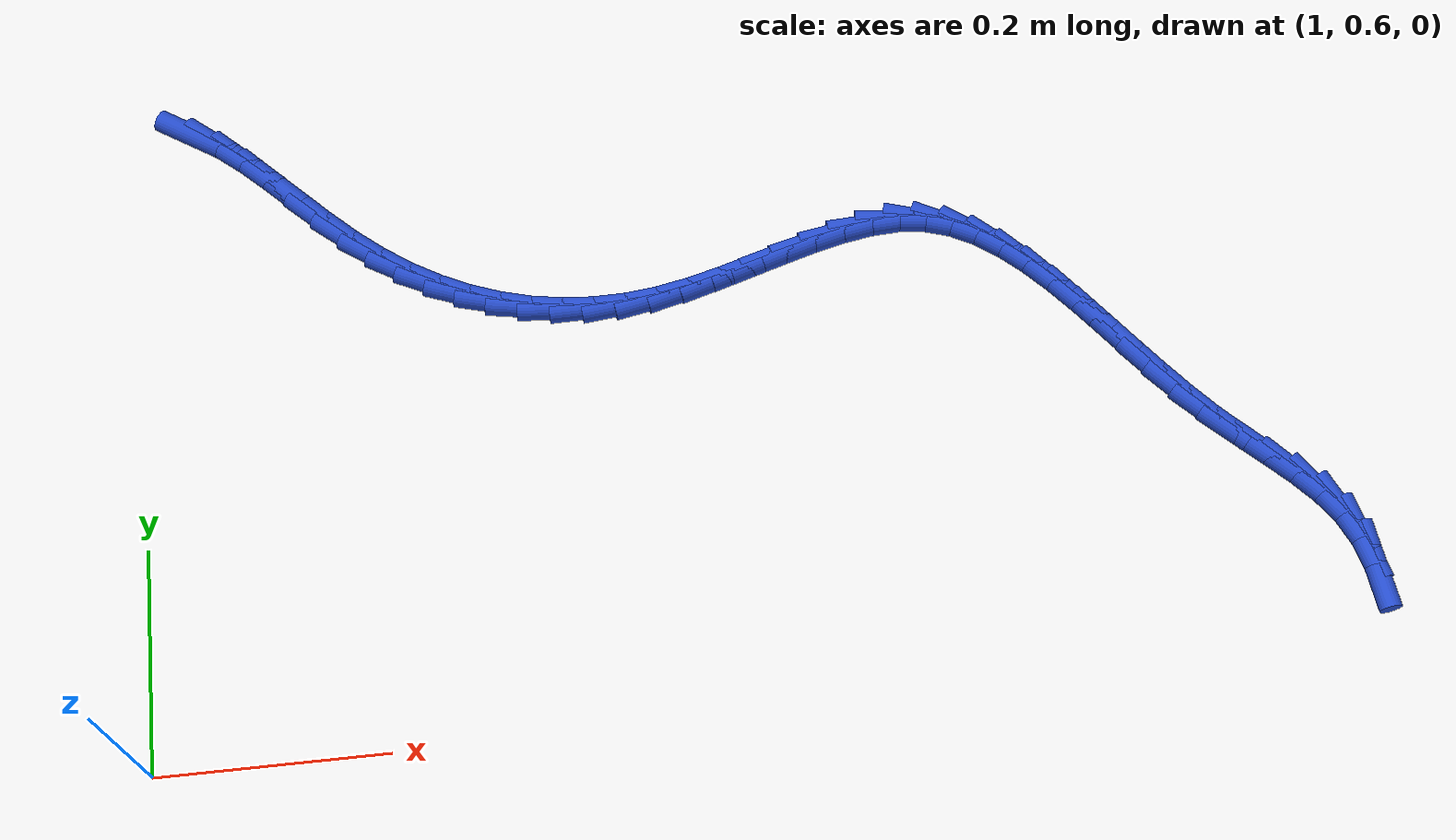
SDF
<sdf version="1.6">
 <world name="default">
  <model name="ground_plane">
   <static>1</static>
   <link name="link">
    <collision name="collision">
     <geometry><plane><normal>0 0 1</normal><size>100 100</size></plane></geometry>
     <surface><friction><ode><mu>100</mu><mu2>50</mu2></ode></friction></surface>
    </collision>
    <visual name="visual">
     <cast_shadows>0</cast_shadows>
     <geometry><plane><normal>0 0 1</normal><size>100 100</size></plane></geometry>
     <material>
      <script><uri>file://media/materials/scripts/gazebo.material</uri><name>Gazebo/WhiteGlow</name></script>
     </material>
    </visual>
   </link>
  </model>
  <model name="line">
   <link name="link_66">
    <pose>1.0518490989701217 1.1957604324525315 0.01 0 1.57 -0.5650890107931418</pose>
    <collision name="collision">
     <geometry><cylinder><radius>0.01</radius><length>0.08</length></cylinder></geometry>
    </collision>
    <visual name="visual">
     <material>
      <script><name>Gazebo/Blue</name><uri>file://media/materials/scripts/gazebo.material</uri></script>
     </material>
     <geometry><cylinder><radius>0.01</radius><length>0.08</length></cylinder></geometry>
    </visual>
   </link>
   <link name="link_67">
    <pose>1.0736690568654474 1.1819252347233482 0.01 0 1.57 -0.6861546189982555</pose>
    <collision name="collision">
     <geometry><cylinder><radius>0.01</radius><length>0.08</length></cylinder></geometry>
    </collision>
    <visual name="visual">
     <material>
      <script><name>Gazebo/Blue</name><uri>file://media/materials/scripts/gazebo.material</uri></script>
     </material>
     <geometry><cylinder><radius>0.01</radius><length>0.08</length></cylinder></geometry>
    </visual>
   </link>
   <link name="link_68">
    <pose>1.0957716449278216 1.163825607711318 0.01 0 1.57 -0.7538373123320089</pose>
    <collision name="collision">
     <geometry><cylinder><radius>0.01</radius><length>0.08</length></cylinder></geometry>
    </collision>
    <visual name="visual">
     <material>
      <script><name>Gazebo/Blue</name><uri>file://media/materials/scripts/gazebo.material</uri></script>
     </material>
     <geometry><cylinder><radius>0.01</radius><length>0.08</length></cylinder></geometry>
    </visual>
   </link>
   <link name="link_69">
    <pose>1.1182322991945388 1.1427397741714995 0.01 0 1.57 -0.7832019829565643</pose>
    <collision name="collision">
     <geometry><cylinder><radius>0.01</radius><length>0.08</length></cylinder></geometry>
    </collision>
    <visual name="visual">
     <material>
      <script><name>Gazebo/Blue</name><uri>file://media/materials/scripts/gazebo.material</uri></script>
     </material>
     <geometry><cylinder><radius>0.01</radius><length>0.08</length></cylinder></geometry>
    </visual>
   </link>
   <link name="link_70">
    <pose>1.141126455702895 1.1199459568589514 0.01 0 1.57 -0.781548101660726</pose>
    <collision name="collision">
     <geometry><cylinder><radius>0.01</radius><length>0.08</length></cylinder></geometry>
    </collision>
    <visual name="visual">
     <material>
      <script><name>Gazebo/Blue</name><uri>file://media/materials/scripts/gazebo.material</uri></script>
     </material>
     <geometry><cylinder><radius>0.01</radius><length>0.08</length></cylinder></geometry>
    </visual>
   </link>
   <link name="link_71">
    <pose>1.1645295504901843 1.0967223785287328 0.01 0 1.57 -0.7506351547629723</pose>
    <collision name="collision">
     <geometry><cylinder><radius>0.01</radius><length>0.08</length></cylinder></geometry>
    </collision>
    <visual name="visual">
     <material>
      <script><name>Gazebo/Blue</name><uri>file://media/materials/scripts/gazebo.material</uri></script>
     </material>
     <geometry><cylinder><radius>0.01</radius><length>0.08</length></cylinder></geometry>
    </visual>
   </link>
   <link name="link_72">
    <pose>1.1885170195937018 1.0743472619359025 0.01 0 1.57 -0.6893083918656042</pose>
    <collision name="collision">
     <geometry><cylinder><radius>0.01</radius><length>0.08</length></cylinder></geometry>
    </collision>
    <visual name="visual">
     <material>
      <script><name>Gazebo/Blue</name><uri>file://media/materials/scripts/gazebo.material</uri></script>
     </material>
     <geometry><cylinder><radius>0.01</radius><length>0.08</length></cylinder></geometry>
    </visual>
   </link>
   <link name="link_73">
    <pose>1.213158577444704 1.0540383293826272 0.01 0 1.57 -0.6118042056567816</pose>
    <collision name="collision">
     <geometry><cylinder><radius>0.01</radius><length>0.08</length></cylinder></geometry>
    </collision>
    <visual name="visual">
     <material>
      <script><name>Gazebo/Blue</name><uri>file://media/materials/scripts/gazebo.material</uri></script>
     </material>
     <geometry><cylinder><radius>0.01</radius><length>0.08</length></cylinder></geometry>
    </visual>
   </link>
   <link name="link_74">
    <pose>1.2384555158661643 1.036289800231295 0.01 0 1.57 -0.5297181678622142</pose>
    <collision name="collision">
     <geometry><cylinder><radius>0.01</radius><length>0.08</length></cylinder></geometry>
    </collision>
    <visual name="visual">
     <material>
      <script><name>Gazebo/Blue</name><uri>file://media/materials/scripts/gazebo.material</uri></script>
     </material>
     <geometry><cylinder><radius>0.01</radius><length>0.08</length></cylinder></geometry>
    </visual>
   </link>
   <link name="link_75">
    <pose>1.2643640593866377 1.021119350771493 0.01 0 1.57 -0.4436697737437152</pose>
    <collision name="collision">
     <geometry><cylinder><radius>0.01</radius><length>0.08</length></cylinder></geometry>
    </collision>
    <visual name="visual">
     <material>
      <script><name>Gazebo/Blue</name><uri>file://media/materials/scripts/gazebo.material</uri></script>
     </material>
     <geometry><cylinder><radius>0.01</radius><length>0.08</length></cylinder></geometry>
    </visual>
   </link>
   <link name="link_76">
    <pose>1.2908396388026537 1.008536264343943 0.01 0 1.57 -0.35428748753525774</pose>
    <collision name="collision">
     <geometry><cylinder><radius>0.01</radius><length>0.08</length></cylinder></geometry>
    </collision>
    <visual name="visual">
     <material>
      <script><name>Gazebo/Blue</name><uri>file://media/materials/scripts/gazebo.material</uri></script>
     </material>
     <geometry><cylinder><radius>0.01</radius><length>0.08</length></cylinder></geometry>
    </visual>
   </link>
   <link name="link_77">
    <pose>1.3178376849107436 0.9985498242893678 0.01 0 1.57 -0.2624225195902045</pose>
    <collision name="collision">
     <geometry><cylinder><radius>0.01</radius><length>0.08</length></cylinder></geometry>
    </collision>
    <visual name="visual">
     <material>
      <script><name>Gazebo/Blue</name><uri>file://media/materials/scripts/gazebo.material</uri></script>
     </material>
     <geometry><cylinder><radius>0.01</radius><length>0.08</length></cylinder></geometry>
    </visual>
   </link>
   <link name="link_78">
    <pose>1.3453136285074376 0.9911693139484881 0.01 0 1.57 -0.16911165839245496</pose>
    <collision name="collision">
     <geometry><cylinder><radius>0.01</radius><length>0.08</length></cylinder></geometry>
    </collision>
    <visual name="visual">
     <material>
      <script><name>Gazebo/Blue</name><uri>file://media/materials/scripts/gazebo.material</uri></script>
     </material>
     <geometry><cylinder><radius>0.01</radius><length>0.08</length></cylinder></geometry>
    </visual>
   </link>
   <link name="link_79">
    <pose>1.3732229003892666 0.9864040166620267 0.01 0 1.57 -0.07550810771967992</pose>
    <collision name="collision">
     <geometry><cylinder><radius>0.01</radius><length>0.08</length></cylinder></geometry>
    </collision>
    <visual name="visual">
     <material>
      <script><name>Gazebo/Blue</name><uri>file://media/materials/scripts/gazebo.material</uri></script>
     </material>
     <geometry><cylinder><radius>0.01</radius><length>0.08</length></cylinder></geometry>
    </visual>
   </link>
   <link name="link_80">
    <pose>1.4015209313527603 0.9842632157707054 0.01 0 1.57 0.017209914550818845</pose>
    <collision name="collision">
     <geometry><cylinder><radius>0.01</radius><length>0.08</length></cylinder></geometry>
    </collision>
    <visual name="visual">
     <material>
      <script><name>Gazebo/Blue</name><uri>file://media/materials/scripts/gazebo.material</uri></script>
     </material>
     <geometry><cylinder><radius>0.01</radius><length>0.08</length></cylinder></geometry>
    </visual>
   </link>
   <link name="link_81">
    <pose>1.43016315219445 0.9847561946152461 0.01 0 1.57 0.10793556669910466</pose>
    <collision name="collision">
     <geometry><cylinder><radius>0.01</radius><length>0.08</length></cylinder></geometry>
    </collision>
    <visual name="visual">
     <material>
      <script><name>Gazebo/Blue</name><uri>file://media/materials/scripts/gazebo.material</uri></script>
     </material>
     <geometry><cylinder><radius>0.01</radius><length>0.08</length></cylinder></geometry>
    </visual>
   </link>
   <link name="link_82">
    <pose>1.4591049937108662 0.9878922365363711 0.01 0 1.57 0.1931952816036505</pose>
    <collision name="collision">
     <geometry><cylinder><radius>0.01</radius><length>0.08</length></cylinder></geometry>
    </collision>
    <visual name="visual">
     <material>
      <script><name>Gazebo/Blue</name><uri>file://media/materials/scripts/gazebo.material</uri></script>
     </material>
     <geometry><cylinder><radius>0.01</radius><length>0.08</length></cylinder></geometry>
    </visual>
   </link>
   <link name="link_83">
    <pose>1.4882885850385599 0.9936015786839131 0.01 0 1.57 0.2560034183134011</pose>
    <collision name="collision">
     <geometry><cylinder><radius>0.01</radius><length>0.08</length></cylinder></geometry>
    </collision>
    <visual name="visual">
     <material>
      <script><name>Gazebo/Blue</name><uri>file://media/materials/scripts/gazebo.material</uri></script>
     </material>
     <geometry><cylinder><radius>0.01</radius><length>0.08</length></cylinder></geometry>
    </visual>
   </link>
   <link name="link_84">
    <pose>1.5175634558104536 1.0012641781636127 0.01 0 1.57 0.2917384775782794</pose>
    <collision name="collision">
     <geometry><cylinder><radius>0.01</radius><length>0.08</length></cylinder></geometry>
    </collision>
    <visual name="visual">
     <material>
      <script><name>Gazebo/Blue</name><uri>file://media/materials/scripts/gazebo.material</uri></script>
     </material>
     <geometry><cylinder><radius>0.01</radius><length>0.08</length></cylinder></geometry>
    </visual>
   </link>
   <link name="link_85">
    <pose>1.5467397651882988 1.0100260298701536 0.01 0 1.57 0.3022166279267805</pose>
    <collision name="collision">
     <geometry><cylinder><radius>0.01</radius><length>0.08</length></cylinder></geometry>
    </collision>
    <visual name="visual">
     <material>
      <script><name>Gazebo/Blue</name><uri>file://media/materials/scripts/gazebo.material</uri></script>
     </material>
     <geometry><cylinder><radius>0.01</radius><length>0.08</length></cylinder></geometry>
    </visual>
   </link>
   <link name="link_86">
    <pose>1.575627528010988 1.0190322710479394 0.01 0 1.57 0.28735045449923674</pose>
    <collision name="collision">
     <geometry><cylinder><radius>0.01</radius><length>0.08</length></cylinder></geometry>
    </collision>
    <visual name="visual">
     <material>
      <script><name>Gazebo/Blue</name><uri>file://media/materials/scripts/gazebo.material</uri></script>
     </material>
     <geometry><cylinder><radius>0.01</radius><length>0.08</length></cylinder></geometry>
    </visual>
   </link>
   <link name="link_87">
    <pose>1.6040367591174103 1.0274280389413712 0.01 0 1.57 0.24481761227179658</pose>
    <collision name="collision">
     <geometry><cylinder><radius>0.01</radius><length>0.08</length></cylinder></geometry>
    </collision>
    <visual name="visual">
     <material>
      <script><name>Gazebo/Blue</name><uri>file://media/materials/scripts/gazebo.material</uri></script>
     </material>
     <geometry><cylinder><radius>0.01</radius><length>0.08</length></cylinder></geometry>
    </visual>
   </link>
   <link name="link_88">
    <pose>1.6317774733464574 1.0343584707948512 0.01 0 1.57 0.1698452654842809</pose>
    <collision name="collision">
     <geometry><cylinder><radius>0.01</radius><length>0.08</length></cylinder></geometry>
    </collision>
    <visual name="visual">
     <material>
      <script><name>Gazebo/Blue</name><uri>file://media/materials/scripts/gazebo.material</uri></script>
     </material>
     <geometry><cylinder><radius>0.01</radius><length>0.08</length></cylinder></geometry>
    </visual>
   </link>
   <link name="link_89">
    <pose>1.6586596855370208 1.038968703852783 0.01 0 1.57 0.05549713772619637</pose>
    <collision name="collision">
     <geometry><cylinder><radius>0.01</radius><length>0.08</length></cylinder></geometry>
    </collision>
    <visual name="visual">
     <material>
      <script><name>Gazebo/Blue</name><uri>file://media/materials/scripts/gazebo.material</uri></script>
     </material>
     <geometry><cylinder><radius>0.01</radius><length>0.08</length></cylinder></geometry>
    </visual>
   </link>
   <link name="link_90">
    <pose>1.684493410527991 1.040403875359568 0.01 0 1.57 -0.10510836965926613</pose>
    <collision name="collision">
     <geometry><cylinder><radius>0.01</radius><length>0.08</length></cylinder></geometry>
    </collision>
    <visual name="visual">
     <material>
      <script><name>Gazebo/Blue</name><uri>file://media/materials/scripts/gazebo.material</uri></script>
     </material>
     <geometry><cylinder><radius>0.01</radius><length>0.08</length></cylinder></geometry>
    </visual>
   </link>
   <link name="link_91">
    <pose>1.7090886695151686 1.0378091454149923 0.01 0 1.57 -0.3005969065694672</pose>
    <collision name="collision">
     <geometry><cylinder><radius>0.01</radius><length>0.08</length></cylinder></geometry>
    </collision>
    <visual name="visual">
     <material>
      <script><name>Gazebo/Blue</name><uri>file://media/materials/scripts/gazebo.material</uri></script>
     </material>
     <geometry><cylinder><radius>0.01</radius><length>0.08</length></cylinder></geometry>
    </visual>
   </link>
   <link name="link_92">
    <pose>1.7323317844930175 1.0306040030363097 0.01 0 1.57 -0.47867323924218885</pose>
    <collision name="collision">
     <geometry><cylinder><radius>0.01</radius><length>0.08</length></cylinder></geometry>
    </collision>
    <visual name="visual">
     <material>
      <script><name>Gazebo/Blue</name><uri>file://media/materials/scripts/gazebo.material</uri></script>
     </material>
     <geometry><cylinder><radius>0.01</radius><length>0.08</length></cylinder></geometry>
    </visual>
   </link>
   <link name="link_93">
    <pose>1.7543752888416382 1.0191650632803104 0.01 0 1.57 -0.6217768013342018</pose>
    <collision name="collision">
     <geometry><cylinder><radius>0.01</radius><length>0.08</length></cylinder></geometry>
    </collision>
    <visual name="visual">
     <material>
      <script><name>Gazebo/Blue</name><uri>file://media/materials/scripts/gazebo.material</uri></script>
     </material>
     <geometry><cylinder><radius>0.01</radius><length>0.08</length></cylinder></geometry>
    </visual>
   </link>
   <link name="link_94">
    <pose>1.7754297387399853 1.004077554113169 0.01 0 1.57 -0.7301518663744101</pose>
    <collision name="collision">
     <geometry><cylinder><radius>0.01</radius><length>0.08</length></cylinder></geometry>
    </collision>
    <visual name="visual">
     <material>
      <script><name>Gazebo/Blue</name><uri>file://media/materials/scripts/gazebo.material</uri></script>
     </material>
     <geometry><cylinder><radius>0.01</radius><length>0.08</length></cylinder></geometry>
    </visual>
   </link>
   <link name="link_95">
    <pose>1.7957056903670119 0.9859267035010617 0.01 0 1.57 -0.808225720819763</pose>
    <collision name="collision">
     <geometry><cylinder><radius>0.01</radius><length>0.08</length></cylinder></geometry>
    </collision>
    <visual name="visual">
     <material>
      <script><name>Gazebo/Blue</name><uri>file://media/materials/scripts/gazebo.material</uri></script>
     </material>
     <geometry><cylinder><radius>0.01</radius><length>0.08</length></cylinder></geometry>
    </visual>
   </link>
   <link name="link_96">
    <pose>1.8154136999016717 0.9652977394101631 0.01 0 1.57 -0.8609891973935172</pose>
    <collision name="collision">
     <geometry><cylinder><radius>0.01</radius><length>0.08</length></cylinder></geometry>
    </collision>
    <visual name="visual">
     <material>
      <script><name>Gazebo/Blue</name><uri>file://media/materials/scripts/gazebo.material</uri></script>
     </material>
     <geometry><cylinder><radius>0.01</radius><length>0.08</length></cylinder></geometry>
    </visual>
   </link>
   <link name="link_97">
    <pose>1.8347643235229176 0.9427758898066483 0.01 0 1.57 -0.8924784905788519</pose>
    <collision name="collision">
     <geometry><cylinder><radius>0.01</radius><length>0.08</length></cylinder></geometry>
    </collision>
    <visual name="visual">
     <material>
      <script><name>Gazebo/Blue</name><uri>file://media/materials/scripts/gazebo.material</uri></script>
     </material>
     <geometry><cylinder><radius>0.01</radius><length>0.08</length></cylinder></geometry>
    </visual>
   </link>
   <link name="link_98">
    <pose>1.8539681174097045 0.9189463826566927 0.01 0 1.57 -0.905413803566667</pose>
    <collision name="collision">
     <geometry><cylinder><radius>0.01</radius><length>0.08</length></cylinder></geometry>
    </collision>
    <visual name="visual">
     <material>
      <script><name>Gazebo/Blue</name><uri>file://media/materials/scripts/gazebo.material</uri></script>
     </material>
     <geometry><cylinder><radius>0.01</radius><length>0.08</length></cylinder></geometry>
    </visual>
   </link>
   <link name="link_99">
    <pose>1.8732356377409853 0.8943944459264713 0.01 0 1.57 -0.9012511292822168</pose>
    <collision name="collision">
     <geometry><cylinder><radius>0.01</radius><length>0.08</length></cylinder></geometry>
    </collision>
    <visual name="visual">
     <material>
      <script><name>Gazebo/Blue</name><uri>file://media/materials/scripts/gazebo.material</uri></script>
     </material>
     <geometry><cylinder><radius>0.01</radius><length>0.08</length></cylinder></geometry>
    </visual>
   </link>
   <link name="link_100">
    <pose>1.8927774406957143 0.8697053075821604 0.01 0 1.57 -0.880316148188036</pose>
    <collision name="collision">
     <geometry><cylinder><radius>0.01</radius><length>0.08</length></cylinder></geometry>
    </collision>
    <visual name="visual">
     <material>
      <script><name>Gazebo/Blue</name><uri>file://media/materials/scripts/gazebo.material</uri></script>
     </material>
     <geometry><cylinder><radius>0.01</radius><length>0.08</length></cylinder></geometry>
    </visual>
   </link>
   <link name="link_101">
    <pose>1.912804082452844 0.845464195589934 0.01 0 1.57 -0.8419239726850981</pose>
    <collision name="collision">
     <geometry><cylinder><radius>0.01</radius><length>0.08</length></cylinder></geometry>
    </collision>
    <visual name="visual">
     <material>
      <script><name>Gazebo/Blue</name><uri>file://media/materials/scripts/gazebo.material</uri></script>
     </material>
     <geometry><cylinder><radius>0.01</radius><length>0.08</length></cylinder></geometry>
    </visual>
   </link>
   <link name="link_102">
    <pose>1.9335261191913293 0.8222563379159677 0.01 0 1.57 -0.7876854189831398</pose>
    <collision name="collision">
     <geometry><cylinder><radius>0.01</radius><length>0.08</length></cylinder></geometry>
    </collision>
    <visual name="visual">
     <material>
      <script><name>Gazebo/Blue</name><uri>file://media/materials/scripts/gazebo.material</uri></script>
     </material>
     <geometry><cylinder><radius>0.01</radius><length>0.08</length></cylinder></geometry>
    </visual>
   </link>
   <link name="link_103">
    <pose>1.9550854565618343 0.8005981508489145 0.01 0 1.57 -0.7538005368346232</pose>
    <collision name="collision">
     <geometry><cylinder><radius>0.01</radius><length>0.08</length></cylinder></geometry>
    </collision>
    <visual name="visual">
     <material>
      <script><name>Gazebo/Blue</name><uri>file://media/materials/scripts/gazebo.material</uri></script>
     </material>
     <geometry><cylinder><radius>0.01</radius><length>0.08</length></cylinder></geometry>
    </visual>
   </link>
   <link name="link_104">
    <pose>1.9768175906498278 0.7801977481583474 0.01 0 1.57 -0.7668100335997322</pose>
    <collision name="collision">
     <geometry><cylinder><radius>0.01</radius><length>0.08</length></cylinder></geometry>
    </collision>
    <visual name="visual">
     <material>
      <script><name>Gazebo/Blue</name><uri>file://media/materials/scripts/gazebo.material</uri></script>
     </material>
     <geometry><cylinder><radius>0.01</radius><length>0.08</length></cylinder></geometry>
    </visual>
   </link>
   <link name="link_105">
    <pose>1.997533762119092 0.7602377575627354 0.01 0 1.57 -0.8328126502563499</pose>
    <collision name="collision">
     <geometry><cylinder><radius>0.01</radius><length>0.08</length></cylinder></geometry>
    </collision>
    <visual name="visual">
     <material>
      <script><name>Gazebo/Blue</name><uri>file://media/materials/scripts/gazebo.material</uri></script>
     </material>
     <geometry><cylinder><radius>0.01</radius><length>0.08</length></cylinder></geometry>
    </visual>
   </link>
   <link name="link_106">
    <pose>2.0160362929661737 0.7398918671777631 0.01 0 1.57 -0.9600535271767279</pose>
    <collision name="collision">
     <geometry><cylinder><radius>0.01</radius><length>0.08</length></cylinder></geometry>
    </collision>
    <visual name="visual">
     <material>
      <script><name>Gazebo/Blue</name><uri>file://media/materials/scripts/gazebo.material</uri></script>
     </material>
     <geometry><cylinder><radius>0.01</radius><length>0.08</length></cylinder></geometry>
    </visual>
   </link>
   <link name="link_107">
    <pose>2.0311275051876203 0.7183337651191155 0.01 0 1.57 -1.140289312815464</pose>
    <collision name="collision">
     <geometry><cylinder><radius>0.01</radius><length>0.08</length></cylinder></geometry>
    </collision>
    <visual name="visual">
     <material>
      <script><name>Gazebo/Blue</name><uri>file://media/materials/scripts/gazebo.material</uri></script>
     </material>
     <geometry><cylinder><radius>0.01</radius><length>0.08</length></cylinder></geometry>
    </visual>
   </link>
   <link name="link_108">
    <pose>2.0418873715754677 0.6949037770842922 0.01 0 1.57 -1.3103490228393193</pose>
    <collision name="collision">
     <geometry><cylinder><radius>0.01</radius><length>0.08</length></cylinder></geometry>
    </collision>
    <visual name="visual">
     <material>
      <script><name>Gazebo/Blue</name><uri>file://media/materials/scripts/gazebo.material</uri></script>
     </material>
     <geometry><cylinder><radius>0.01</radius><length>0.08</length></cylinder></geometry>
    </visual>
   </link>
   <link name="link_109">
    <pose>2.048611675224627 0.6696719212193839 0.01 0 1.57 -1.4474818775757246</pose>
    <collision name="collision">
     <geometry><cylinder><radius>0.01</radius><length>0.08</length></cylinder></geometry>
    </collision>
    <visual name="visual">
     <material>
      <script><name>Gazebo/Blue</name><uri>file://media/materials/scripts/gazebo.material</uri></script>
     </material>
     <geometry><cylinder><radius>0.01</radius><length>0.08</length></cylinder></geometry>
    </visual>
   </link>
  </model>
 </world>
</sdf>
